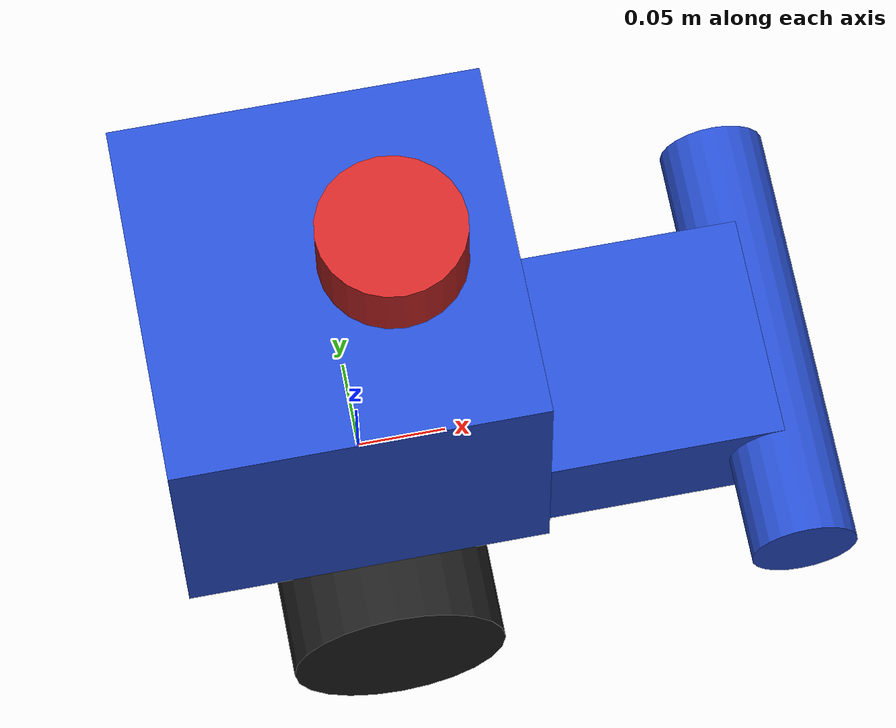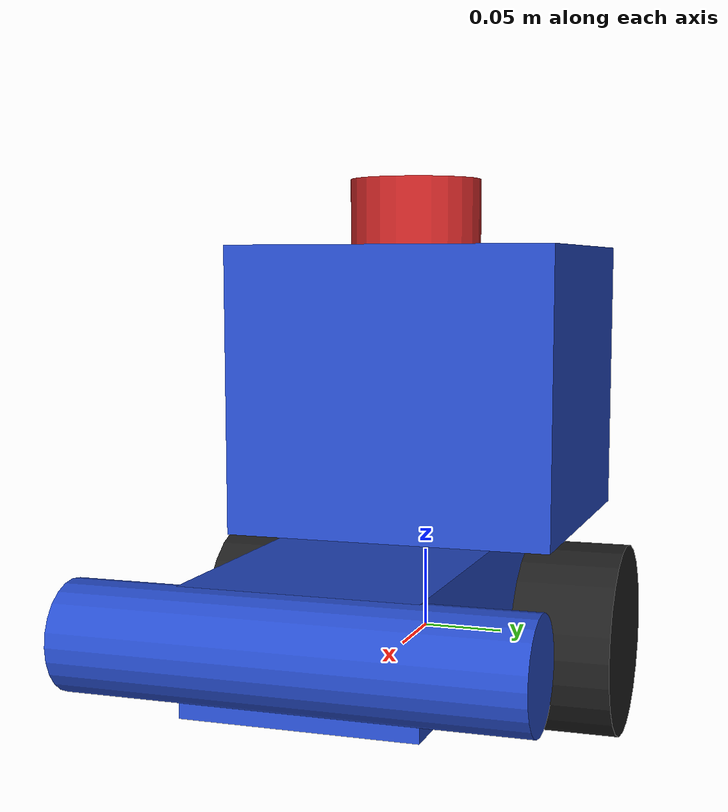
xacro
<?xml version="1.0"?>
<robot xmlns:xacro="http://www.ros.org/wiki/xacro">

    <xacro:include filename="inertia.xacro" />

<xacro:property name="front_chassis_length" value="0.34"/>
<xacro:property name="front_chassis_width" value="0.13"/>
<xacro:property name="front_chassis_height" value="0.07"/>

<xacro:property name="bumper_radius" value="0.03"/>
<xacro:property name="bumper_length" value="0.25"/>

<xacro:property name="wheel_radius" value="0.06"/>
<xacro:property name="wheel_length" value="0.06"/>

<link name="base_link">
</link>

<!--FRONT CHASSIS-->
<joint name="base_link_to_front_chassis" type="fixed">
    <parent link="base_link"/>
    <child link="front_chassis"/>
    <origin xyz="-0.11 0 0"/>
</joint>

<link name="front_chassis">

    <visual>
        <origin xyz="${front_chassis_length/2} 0 ${front_chassis_height/2}" rpy="0 0 0"/>
        <geometry>
            <box size="${front_chassis_length} ${front_chassis_width} ${front_chassis_height}"/>
        </geometry>
        <material name="blue"/>
    </visual>
    <collision>
        <origin xyz="${front_chassis_length/2} 0 ${front_chassis_height/2}" rpy="0 0 0"/>
        <geometry>
            <box size="${front_chassis_length} ${front_chassis_width} ${front_chassis_height}"/>
        </geometry>
        <material name="blue"/>
    </collision>
    <xacro:inertial_box mass="2" x="${front_chassis_length}" y="${front_chassis_width}" z="${front_chassis_height}">
        <origin xyz="${front_chassis_length/2} 0 ${front_chassis_height/2}" rpy="0 0 0"/>
    </xacro:inertial_box>
</link>

<!--FRONT BOX-->
<joint name="base_link_to_front_box" type="fixed">
    <parent link="base_link"/>
    <child link="front_box"/>
    <origin xyz="-0.11 0 0"/>
</joint>

<link name="front_box">

    <visual>
        <origin xyz="0.1 0 ${front_chassis_height+0.0875}" rpy="0 0 0"/>
        <geometry>
            <box size="-0.2 0.2 0.175"/>
        </geometry>
        <material name="blue"/>
    </visual>
    <collision>
        <origin xyz="0.1 0 ${front_chassis_height+0.0875}" rpy="0 0 0"/>
        <geometry>
            <box size="-0.2 0.2 0.175"/>
        </geometry>
        <material name="blue"/>
    </collision>
    <xacro:inertial_box mass="2" x="0.2" y="0.2" z="0.175">
        <origin xyz="0.1 0 ${front_chassis_height+0.0875}" rpy="0 0 0"/>
    </xacro:inertial_box>
</link>

<gazebo reference="front_chassis">
    <material>Gazebo/Blue</material>
</gazebo>

<!--LIDAR-->
<joint name="front_chassis_to_laser" type="fixed">
    <parent link="front_chassis"/>
    <child link="laser"/>
    <origin xyz="0.135 0 ${front_chassis_height+0.175}"/>
</joint>

<link name="laser">
    <visual>
        <origin xyz="0 0 0.02" rpy="0 0 0"/>
        <geometry>
            <cylinder length="0.04" radius="0.04"/>
        </geometry>
        <material name="red"/>
    </visual>
    <collision>
        <origin xyz="0 0 0.02" rpy="0 0 0"/>
        <geometry>
            <cylinder length="0.04" radius="0.04"/>
        </geometry>
        <material name="red"/>
    </collision>
    <xacro:inertial_cylinder mass="0.1" length="0.04" radius="0.04">
        <origin xyz="0 0 0.02" rpy="0 0 0"/>
    </xacro:inertial_cylinder>
</link>

<gazebo reference="bumper">
    <material>Gazebo/Red</material>
</gazebo>

<!--BUMPER-->
<joint name="front_chassis_to_bumper" type="fixed">
    <parent link="front_chassis"/>
    <child link="bumper"/>
    <origin xyz="${front_chassis_length} 0 ${front_chassis_height-bumper_radius}"/>
</joint>

<link name="bumper">
    <visual>
        <origin xyz="0 0 0" rpy="1.5708 0 0"/>
        <geometry>
            <cylinder length="${bumper_length}" radius="${bumper_radius}"/>
        </geometry>
        <material name="blue"/>
    </visual>
    <collision>
        <origin xyz="0 0 0" rpy="0 0 0"/>
        <geometry>
            <cylinder length="${bumper_length}" radius="${bumper_radius}"/>
        </geometry>
        <material name="blue"/>
    </collision>
    <xacro:inertial_cylinder mass="1" length="${bumper_length}" radius="${bumper_radius}">
        <origin xyz="0 0 0" rpy="0 0 0"/>
    </xacro:inertial_cylinder>
</link>

<gazebo reference="bumper">
    <material>Gazebo/Blue</material>
</gazebo>

<!--FRONT WHEEL DRIVE-->
<joint name="base_to_FWD" type="continuous">
    <parent link="base_link"/>
    <child link="FWD"/>
    <origin xyz="0 0 0" rpy="-1.5708 0 0"/>
    <axis xyz="0 0 1"/>
</joint>

<link name="FWD">
    <visual>
        <geometry>
            <cylinder length="${wheel_length}" radius="${wheel_radius}"/>
        </geometry>
        <material name="black"/>
    </visual>
    <collision>
        <geometry>
            <cylinder length="${wheel_length}" radius="${wheel_radius}"/>
        </geometry>
        <material name="black"/>
    </collision>
    <xacro:inertial_cylinder mass="0.1" length="${wheel_length}" radius="${wheel_radius}">
        <origin xyz="0 0 0" rpy="0 0 0"/>
    </xacro:inertial_cylinder>
</link>

<gazebo reference="FWD">
    <material>Gazebo/Black</material>
</gazebo>

<!--LEFT FRONT WHEEL-->
<joint name="base_to_LFW" type="fixed">
    <parent link="base_link"/>
    <child link="LFW"/>
    <origin xyz="0 ${front_chassis_width/2+wheel_length/2+0.005} 0" rpy="-1.5708 0 0"/>
    <axis xyz="0 0 1"/>
</joint>

<link name="LFW">
    <visual>
        <geometry>
            <cylinder length="${wheel_length}" radius="${wheel_radius}"/>
        </geometry>
        <material name="black"/>
    </visual>
    <collision>
        <geometry>
            <cylinder length="${wheel_length}" radius="${wheel_radius}"/>
        </geometry>
        <material name="black"/>
    </collision>
    <xacro:inertial_cylinder mass="0.1" length="${wheel_length}" radius="${wheel_radius}">
        <origin xyz="0 0 0" rpy="0 0 0"/>
    </xacro:inertial_cylinder>
</link>

<gazebo reference="LFW">
    <material>Gazebo/Black</material>
    <mu1 value="0.001"/>
    <mu2 value="0.001"/>
</gazebo>

<!--RIGHT FRONT WHEEL-->
<joint name="base_to_RFW" type="fixed">
    <parent link="base_link"/>
    <child link="RFW"/>
    <origin xyz="0 ${-front_chassis_width/2-wheel_length/2-0.005} 0" rpy="1.5708 0 0"/>
    <axis xyz="0 0 1"/>
</joint>

<link name="RFW">
    <visual>
        <geometry>
            <cylinder length="${wheel_length}" radius="${wheel_radius}"/>
        </geometry>
        <material name="black"/>
    </visual>
    <collision>
        <geometry>
            <cylinder length="${wheel_length}" radius="${wheel_radius}"/>
        </geometry>
        <material name="black"/>
    </collision>
    <xacro:inertial_cylinder mass="0.1" length="${wheel_length}" radius="${wheel_radius}">
        <origin xyz="0 0 0" rpy="0 0 0"/>
    </xacro:inertial_cylinder>
</link>

<gazebo reference="RFW">
    <material>Gazebo/Black</material>
    <mu1 value="0.001"/>
    <mu2 value="0.001"/>
</gazebo>

</robot>
